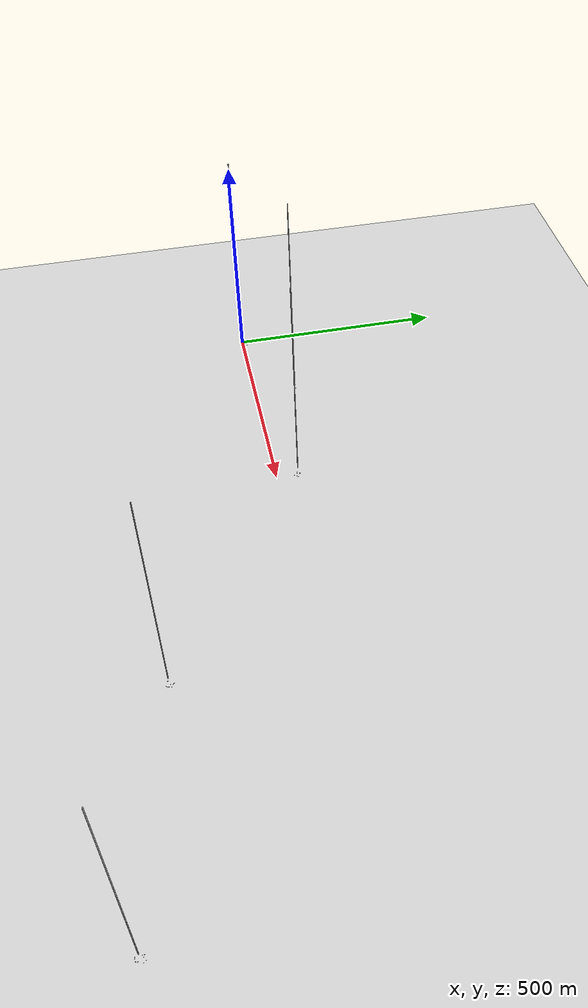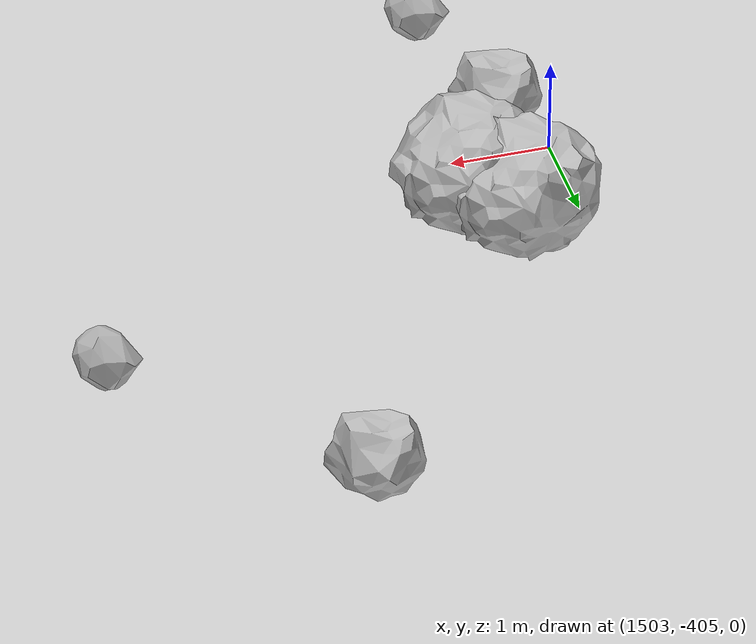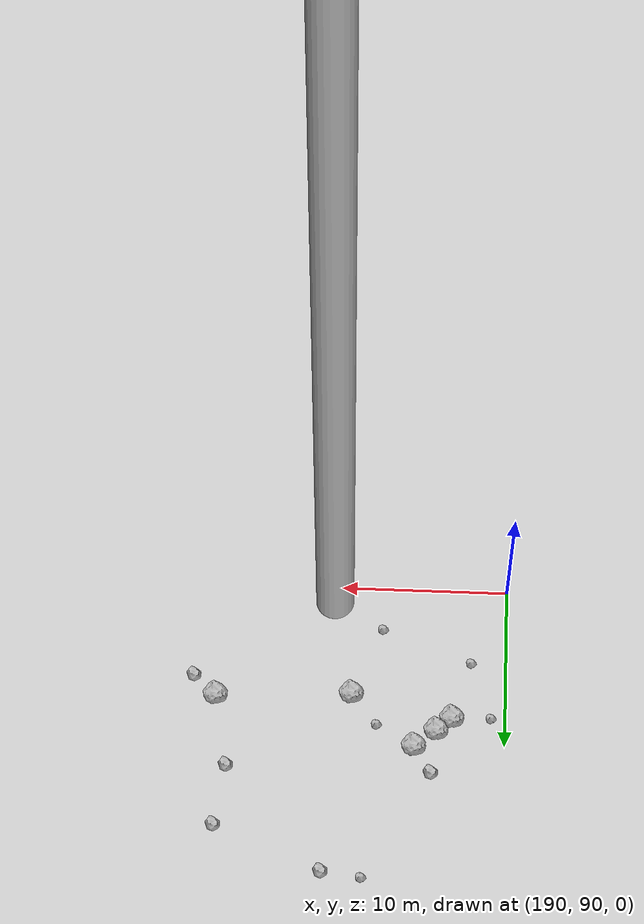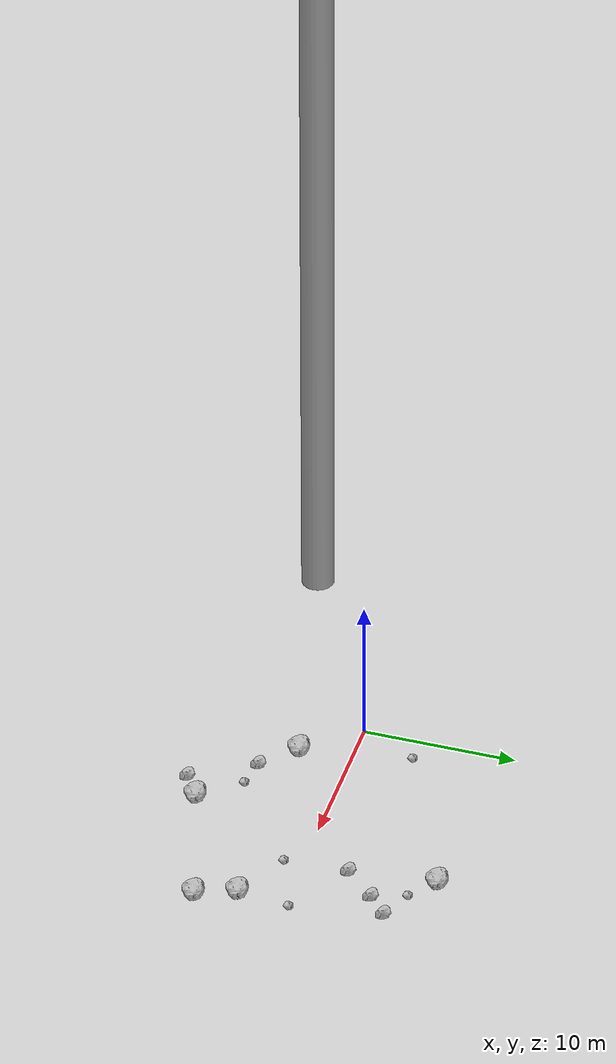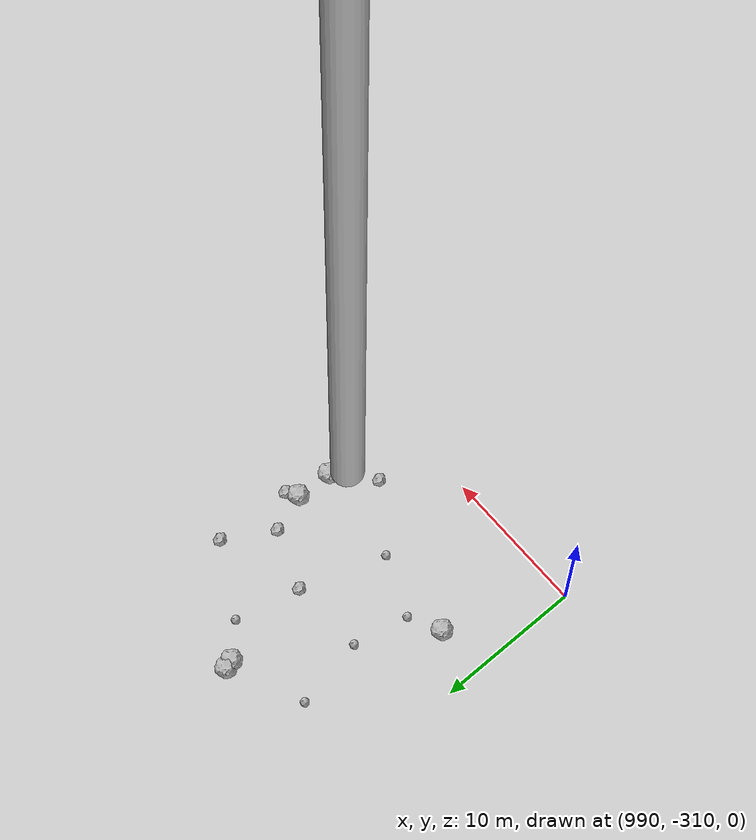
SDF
<?xml version="1.0" ?>
<sdf version="1.6">
  <world name="default">

    <include>
      <uri>model://custom_ground</uri>
    </include>

    <include>
      <uri>model://sun</uri>
    </include>

    <spherical_coordinates>
      <surface_model>EARTH_WGS84</surface_model>
      <latitude_deg>38.161479</latitude_deg>
      <longitude_deg>-122.454630</longitude_deg>
      <elevation>488.0</elevation>
      <heading_deg>90</heading_deg>
    </spherical_coordinates>

    <model name="rock1_0_0">
      <include>
        <uri>model://rock1</uri>
        <pose>3.1804140854695317 -3.3798319945668247 0.5 0 0 0</pose>
      </include>
    </model>
    <model name="rock1_0_1">
      <include>
        <uri>model://rock1</uri>
        <pose>9.36350405610625 -8.312974728637922 0.5 0 0 0</pose>
      </include>
    </model>
    <model name="rock1_0_2">
      <include>
        <uri>model://rock1</uri>
        <pose>18.21158650850122 -5.625817284211781 0.5 0 0 0</pose>
      </include>
    </model>
    <model name="rock1_0_3">
      <include>
        <uri>model://rock1</uri>
        <pose>12.930370635144971 8.521949047077143 0.5 0 0 0</pose>
      </include>
    </model>
    <model name="rock1_0_4">
      <include>
        <uri>model://rock1</uri>
        <pose>17.32565856102385 -3.0568789480423852 0.5 0 0 0</pose>
      </include>
    </model>
    <model name="rock2_0_0">
      <include>
        <uri>model://rock2</uri>
        <pose>7.539138790282706 -9.393593108657516 0.3 0 0 0</pose>
      </include>
    </model>
    <model name="rock2_0_1">
      <include>
        <uri>model://rock2</uri>
        <pose>5.1847080186848 -5.4201045918126844 0.3 0 0 0</pose>
      </include>
    </model>
    <model name="rock2_0_2">
      <include>
        <uri>model://rock2</uri>
        <pose>15.27488733647173 4.960526797679812 0.3 0 0 0</pose>
      </include>
    </model>
    <model name="rock2_0_3">
      <include>
        <uri>model://rock2</uri>
        <pose>16.63702033050466 6.166631654693749 0.3 0 0 0</pose>
      </include>
    </model>
    <model name="rock2_0_4">
      <include>
        <uri>model://rock2</uri>
        <pose>13.401558715262516 2.9669503246966062 0.3 0 0 0</pose>
      </include>
    </model>
    <model name="rock3_0_0">
      <include>
        <uri>model://rock3</uri>
        <pose>1.7858293030610817 3.7340833204210107 0.2 0 0 0</pose>
      </include>
    </model>
    <model name="rock3_0_1">
      <include>
        <uri>model://rock3</uri>
        <pose>14.47823101798025 7.0819626681151355 0.2 0 0 0</pose>
      </include>
    </model>
    <model name="rock3_0_2">
      <include>
        <uri>model://rock3</uri>
        <pose>17.50971559864713 0.29521716751073335 0.2 0 0 0</pose>
      </include>
    </model>
    <model name="rock3_0_3">
      <include>
        <uri>model://rock3</uri>
        <pose>13.50559188093591 -1.2291901816639683 0.2 0 0 0</pose>
      </include>
    </model>
    <model name="rock3_0_4">
      <include>
        <uri>model://rock3</uri>
        <pose>7.066554735504296 -5.807766253145228 0.2 0 0 0</pose>
      </include>
    </model>
    <model name="rock1_1_0">
      <include>
        <uri>model://rock1</uri>
        <pose>207.34833690400197 97.39435777149795 0.5 0 0 0</pose>
      </include>
    </model>
    <model name="rock1_1_1">
      <include>
        <uri>model://rock1</uri>
        <pose>199.224585134656 97.03388690897248 0.5 0 0 0</pose>
      </include>
    </model>
    <model name="rock1_1_2">
      <include>
        <uri>model://rock1</uri>
        <pose>195.41156150244632 100.25589587175809 0.5 0 0 0</pose>
      </include>
    </model>
    <model name="rock1_1_3">
      <include>
        <uri>model://rock1</uri>
        <pose>193.19340134703197 98.39611096124182 0.5 0 0 0</pose>
      </include>
    </model>
    <model name="rock1_1_4">
      <include>
        <uri>model://rock1</uri>
        <pose>194.11165143470922 99.20926948941121 0.5 0 0 0</pose>
      </include>
    </model>
    <model name="rock2_1_0">
      <include>
        <uri>model://rock2</uri>
        <pose>200.6427591307851 108.24787118140021 0.3 0 0 0</pose>
      </include>
    </model>
    <model name="rock2_1_1">
      <include>
        <uri>model://rock2</uri>
        <pose>206.50459652352754 101.83220803390122 0.3 0 0 0</pose>
      </include>
    </model>
    <model name="rock2_1_2">
      <include>
        <uri>model://rock2</uri>
        <pose>207.06187180423714 105.59093437985088 0.3 0 0 0</pose>
      </include>
    </model>
    <model name="rock2_1_3">
      <include>
        <uri>model://rock2</uri>
        <pose>208.7045002465547 96.11069090290611 0.3 0 0 0</pose>
      </include>
    </model>
    <model name="rock2_1_4">
      <include>
        <uri>model://rock2</uri>
        <pose>194.37797292553097 101.87112748944124 0.3 0 0 0</pose>
      </include>
    </model>
    <model name="rock3_1_0">
      <include>
        <uri>model://rock3</uri>
        <pose>197.64806234626525 98.89036221413623 0.2 0 0 0</pose>
      </include>
    </model>
    <model name="rock3_1_1">
      <include>
        <uri>model://rock3</uri>
        <pose>198.2441913469268 108.51644148983169 0.2 0 0 0</pose>
      </include>
    </model>
    <model name="rock3_1_2">
      <include>
        <uri>model://rock3</uri>
        <pose>192.0718746576684 94.73527633144654 0.2 0 0 0</pose>
      </include>
    </model>
    <model name="rock3_1_3">
      <include>
        <uri>model://rock3</uri>
        <pose>197.4270608246624 92.70413252472487 0.2 0 0 0</pose>
      </include>
    </model>
    <model name="rock3_1_4">
      <include>
        <uri>model://rock3</uri>
        <pose>190.82993802385397 98.274421364769 0.2 0 0 0</pose>
      </include>
    </model>
    <model name="rock1_2_0">
      <include>
        <uri>model://rock1</uri>
        <pose>499.905669027313 55.56464786967464 0.5 0 0 0</pose>
      </include>
    </model>
    <model name="rock1_2_1">
      <include>
        <uri>model://rock1</uri>
        <pose>500.44656163020744 53.57502493855007 0.5 0 0 0</pose>
      </include>
    </model>
    <model name="rock1_2_2">
      <include>
        <uri>model://rock1</uri>
        <pose>497.83124347194547 54.05169653686203 0.5 0 0 0</pose>
      </include>
    </model>
    <model name="rock1_2_3">
      <include>
        <uri>model://rock1</uri>
        <pose>498.2758662759549 48.0496079770317 0.5 0 0 0</pose>
      </include>
    </model>
    <model name="rock1_2_4">
      <include>
        <uri>model://rock1</uri>
        <pose>507.37760797629727 46.044005098314535 0.5 0 0 0</pose>
      </include>
    </model>
    <model name="rock2_2_0">
      <include>
        <uri>model://rock2</uri>
        <pose>494.55721350911546 48.69722082769806 0.3 0 0 0</pose>
      </include>
    </model>
    <model name="rock2_2_1">
      <include>
        <uri>model://rock2</uri>
        <pose>509.55696067765945 48.97654043584779 0.3 0 0 0</pose>
      </include>
    </model>
    <model name="rock2_2_2">
      <include>
        <uri>model://rock2</uri>
        <pose>492.29222215481667 54.54227178233853 0.3 0 0 0</pose>
      </include>
    </model>
    <model name="rock2_2_3">
      <include>
        <uri>model://rock2</uri>
        <pose>502.9281686093079 41.350569254284515 0.3 0 0 0</pose>
      </include>
    </model>
    <model name="rock2_2_4">
      <include>
        <uri>model://rock2</uri>
        <pose>493.0449635761209 48.08389182361651 0.3 0 0 0</pose>
      </include>
    </model>
    <model name="rock3_2_0">
      <include>
        <uri>model://rock3</uri>
        <pose>498.78212675371884 59.3237121071017 0.2 0 0 0</pose>
      </include>
    </model>
    <model name="rock3_2_1">
      <include>
        <uri>model://rock3</uri>
        <pose>497.23701808963864 52.3062008270805 0.2 0 0 0</pose>
      </include>
    </model>
    <model name="rock3_2_2">
      <include>
        <uri>model://rock3</uri>
        <pose>500.10879695059685 59.19080484124263 0.2 0 0 0</pose>
      </include>
    </model>
    <model name="rock3_2_3">
      <include>
        <uri>model://rock3</uri>
        <pose>491.72972574787514 54.940497897289916 0.2 0 0 0</pose>
      </include>
    </model>
    <model name="rock3_2_4">
      <include>
        <uri>model://rock3</uri>
        <pose>500.0706218426979 52.8461289715888 0.2 0 0 0</pose>
      </include>
    </model>
    <model name="rock1_3_0">
      <include>
        <uri>model://rock1</uri>
        <pose>1006.5794878825252 -301.2968177290335 0.5 0 0 0</pose>
      </include>
    </model>
    <model name="rock1_3_1">
      <include>
        <uri>model://rock1</uri>
        <pose>1006.4379913295238 -303.8037268706159 0.5 0 0 0</pose>
      </include>
    </model>
    <model name="rock1_3_2">
      <include>
        <uri>model://rock1</uri>
        <pose>1000.5894867878712 -290.1328006423754 0.5 0 0 0</pose>
      </include>
    </model>
    <model name="rock1_3_3">
      <include>
        <uri>model://rock1</uri>
        <pose>1000.7694057113499 -290.734964062681 0.5 0 0 0</pose>
      </include>
    </model>
    <model name="rock1_3_4">
      <include>
        <uri>model://rock1</uri>
        <pose>993.4616732236435 -302.3164943177688 0.5 0 0 0</pose>
      </include>
    </model>
    <model name="rock2_3_0">
      <include>
        <uri>model://rock2</uri>
        <pose>1005.6691513034438 -298.74658790889055 0.3 0 0 0</pose>
      </include>
    </model>
    <model name="rock2_3_1">
      <include>
        <uri>model://rock2</uri>
        <pose>1001.6399510204059 -297.19011313349364 0.3 0 0 0</pose>
      </include>
    </model>
    <model name="rock2_3_2">
      <include>
        <uri>model://rock2</uri>
        <pose>1007.5898060377383 -295.44425952244416 0.3 0 0 0</pose>
      </include>
    </model>
    <model name="rock2_3_3">
      <include>
        <uri>model://rock2</uri>
        <pose>1003.9551488415291 -306.06794784901274 0.3 0 0 0</pose>
      </include>
    </model>
    <model name="rock2_3_4">
      <include>
        <uri>model://rock2</uri>
        <pose>1007.3421161767154 -300.8306117215466 0.3 0 0 0</pose>
      </include>
    </model>
    <model name="rock3_3_0">
      <include>
        <uri>model://rock3</uri>
        <pose>995.57553362113 -292.5665564345979 0.2 0 0 0</pose>
      </include>
    </model>
    <model name="rock3_3_1">
      <include>
        <uri>model://rock3</uri>
        <pose>995.6003442538661 -301.2941112152788 0.2 0 0 0</pose>
      </include>
    </model>
    <model name="rock3_3_2">
      <include>
        <uri>model://rock3</uri>
        <pose>999.6728243572338 -303.01111002195876 0.2 0 0 0</pose>
      </include>
    </model>
    <model name="rock3_3_3">
      <include>
        <uri>model://rock3</uri>
        <pose>1002.6949584501821 -292.7476358466814 0.2 0 0 0</pose>
      </include>
    </model>
    <model name="rock3_3_4">
      <include>
        <uri>model://rock3</uri>
        <pose>996.437327300442 -297.4632253243591 0.2 0 0 0</pose>
      </include>
    </model>
    <model name="rock1_4_0">
      <include>
        <uri>model://rock1</uri>
        <pose>1503.659166668508 -403.8086224007675 0.5 0 0 0</pose>
      </include>
    </model>
    <model name="rock1_4_1">
      <include>
        <uri>model://rock1</uri>
        <pose>1495.369235298009 -392.74319718086025 0.5 0 0 0</pose>
      </include>
    </model>
    <model name="rock1_4_2">
      <include>
        <uri>model://rock1</uri>
        <pose>1504.0676442998354 -404.2863779595357 0.5 0 0 0</pose>
      </include>
    </model>
    <model name="rock1_4_3">
      <include>
        <uri>model://rock1</uri>
        <pose>1496.1824213522539 -408.6807042562908 0.5 0 0 0</pose>
      </include>
    </model>
    <model name="rock1_4_4">
      <include>
        <uri>model://rock1</uri>
        <pose>1495.4830211338738 -396.37445317344196 0.5 0 0 0</pose>
      </include>
    </model>
    <model name="rock2_4_0">
      <include>
        <uri>model://rock2</uri>
        <pose>1498.686160265768 -394.50546752951254 0.3 0 0 0</pose>
      </include>
    </model>
    <model name="rock2_4_1">
      <include>
        <uri>model://rock2</uri>
        <pose>1507.6975964955966 -395.3203068781611 0.3 0 0 0</pose>
      </include>
    </model>
    <model name="rock2_4_2">
      <include>
        <uri>model://rock2</uri>
        <pose>1504.2933934887503 -391.15728865981987 0.3 0 0 0</pose>
      </include>
    </model>
    <model name="rock2_4_3">
      <include>
        <uri>model://rock2</uri>
        <pose>1503.372431886674 -405.64136989858685 0.3 0 0 0</pose>
      </include>
    </model>
    <model name="rock2_4_4">
      <include>
        <uri>model://rock2</uri>
        <pose>1505.9838424166212 -400.6577269979824 0.3 0 0 0</pose>
      </include>
    </model>
    <model name="rock3_4_0">
      <include>
        <uri>model://rock3</uri>
        <pose>1494.1961554197946 -396.910366071405 0.2 0 0 0</pose>
      </include>
    </model>
    <model name="rock3_4_1">
      <include>
        <uri>model://rock3</uri>
        <pose>1502.3112795944232 -408.0438859217418 0.2 0 0 0</pose>
      </include>
    </model>
    <model name="rock3_4_2">
      <include>
        <uri>model://rock3</uri>
        <pose>1498.161978607213 -408.78706323043366 0.2 0 0 0</pose>
      </include>
    </model>
    <model name="rock3_4_3">
      <include>
        <uri>model://rock3</uri>
        <pose>1507.9591084269887 -402.80217386944815 0.2 0 0 0</pose>
      </include>
    </model>
    <model name="rock3_4_4">
      <include>
        <uri>model://rock3</uri>
        <pose>1503.689878487877 -407.32265500744296 0.2 0 0 0</pose>
      </include>
    </model>

    <model name="cylinder_1">
      <static>true</static>
      <link name="link">
        <visual name="visual">
          <geometry>
            <cylinder>
              <radius>1</radius>
              <length>500</length>
            </cylinder>
          </geometry>
        </visual>
      </link>
      <pose>10 0 270 0 0 0</pose>
    </model>

    <model name="cylinder_2">
      <static>true</static>
      <link name="link">
        <visual name="visual">
          <geometry>
            <cylinder>
              <radius>1</radius>
              <length>500</length>
            </cylinder>
          </geometry>
        </visual>
      </link>
      <pose>200 100 270 0 0 0</pose>
    </model>

    <model name="cylinder_3">
      <static>true</static>
      <link name="link">
        <visual name="visual">
          <geometry>
            <cylinder>
              <radius>1</radius>
              <length>500</length>
            </cylinder>
          </geometry>
        </visual>
      </link>
      <pose>500 50 270 0 0 0</pose>
    </model>

    <model name="cylinder_4">
      <static>true</static>
      <link name="link">
        <visual name="visual">
          <geometry>
            <cylinder>
              <radius>1</radius>
              <length>500</length>
            </cylinder>
          </geometry>
        </visual>
      </link>
      <pose>1000 -300 270 0 0 0</pose>
    </model>

    <model name="cylinder_5">
      <static>true</static>
      <link name="link">
        <visual name="visual">
          <geometry>
            <cylinder>
              <radius>1</radius>
              <length>500</length>
            </cylinder>
          </geometry>
        </visual>
      </link>
      <pose>1500 -400 270 0 0 0</pose>
    </model>

  </world>
</sdf>

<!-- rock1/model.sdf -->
<sdf version="1.6">
  <model name="rock1">
    <static>true</static> <!-- Set to true if the model should not move -->
    <pose>0 0 0 0 0 0</pose>

    <!--z offset is 0.5 for full scale-->

    <link name="link">
      <collision name="rock1_collision">
        <geometry>
          <mesh>
            <uri>model://meshes/rock1.dae</uri>
          </mesh>
        </geometry>
      </collision>
      <visual name="rock1_visual">
        <geometry>
          <mesh>
            <uri>model://meshes/rock1.dae</uri>
          </mesh>
        </geometry>
        <material>
          <script>
            <uri>model://materials/scripts/sand_pebbles.material</uri>
            <name>custom_ground/Image</name>
          </script>
        </material>
      </visual>
    </link>
  </model>
</sdf>

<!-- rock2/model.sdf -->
<sdf version="1.6">
  <model name="rock2">
    <static>true</static> <!-- Set to true if the model should not move -->
    <pose>0 0 0 0 0 0</pose>

    <!--z offset is 0.3 for full scale-->

    <link name="link">
      <collision name="rock2_collision">
        <geometry>
          <mesh>
            <uri>model://meshes/rock2.dae</uri>
          </mesh>
        </geometry>
      </collision>
      <visual name="rock2_visual">
        <geometry>
          <mesh>
            <uri>model://meshes/rock2.dae</uri>
          </mesh>
        </geometry>
        <material>
          <script>
            <uri>model://materials/scripts/sand_pebbles.material</uri>
            <name>custom_ground/Image</name>
          </script>
        </material>
      </visual>
    </link>
  </model>
</sdf>

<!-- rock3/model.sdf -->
<sdf version="1.6">
  <model name="rock3">
    <static>true</static> <!-- Set to true if the model should not move -->
    <pose>0 0 0 0 0 0</pose>

    <!--z offset is 0.2 for full scale-->

    <link name="link">
      <collision name="rock3_collision">
        <geometry>
          <mesh>
            <uri>model://meshes/rock3.dae</uri>
          </mesh>
        </geometry>
      </collision>
      <visual name="rock3_visual">
        <geometry>
          <mesh>
            <uri>model://meshes/rock3.dae</uri>
          </mesh>
        </geometry>
        <material>
          <script>
            <uri>model://materials/scripts/sand_pebbles.material</uri>
            <name>custom_ground/Image</name>
          </script>
        </material>
      </visual>
    </link>
  </model>
</sdf>

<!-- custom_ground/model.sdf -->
<sdf version="1.6">
  <model name="custom_ground">
    <static>true</static> <!-- Ground is static and immovable -->
    <link name="ground_link">
      <pose>240 0 0 0 0 0</pose> <!-- Position and orientation relative to the world -->
      <!-- Visual Representation -->
      <visual name="ground_visual">
        <geometry>
          <plane>
            <normal>0 0 1</normal> <!-- Upward facing plane -->
            <size>500 500</size> <!-- Size of the plane -->
          </plane>
        </geometry>
        <material>
          <script>
            <uri>model://materials/scripts/sand_pebbles.material</uri>
            <name>custom_ground/Image</name>
          </script>
        </material>
      </visual>

      <!-- Collision Representation -->
      <collision name="ground_collision">
        <geometry>
          <plane>
            <normal>0 0 1</normal>
            <size>100 100</size>
          </plane>
        </geometry>
      </collision>

    </link>
  </model>
</sdf>
